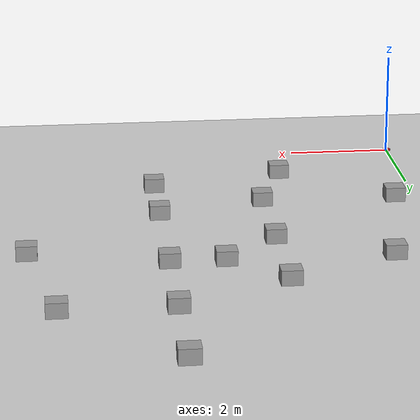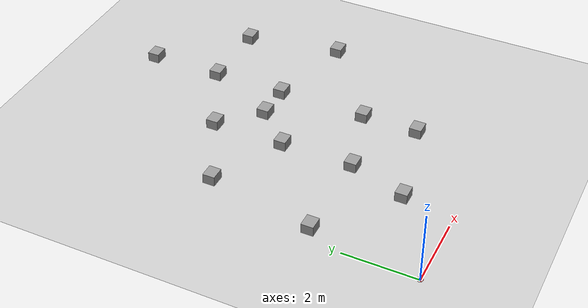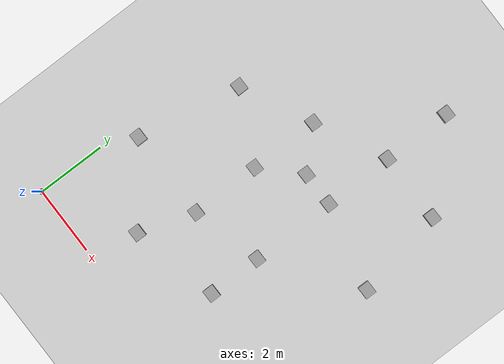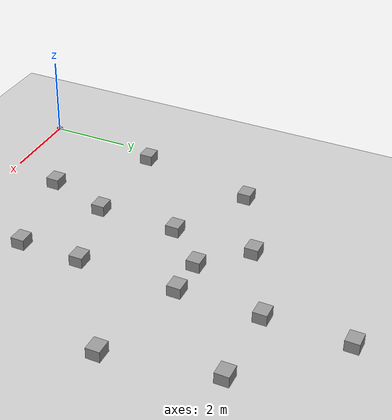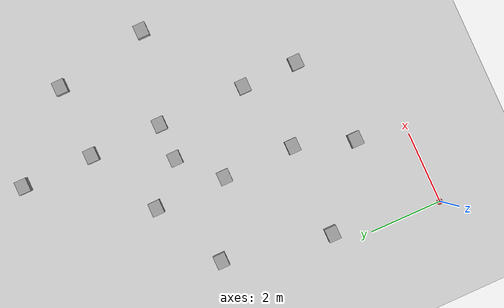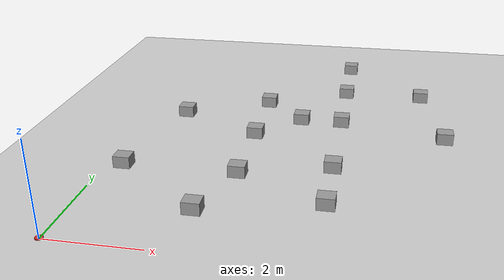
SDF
<sdf version="1.7">
 <world name="default">
  <model name="ground_plane">
   <static>1</static>
   <link name="link">
    <collision name="collision">
     <geometry><plane><normal>0 0 1</normal><size>100 100</size></plane></geometry>
     <surface>
      <contact><collide_bitmask>65535</collide_bitmask></contact>
      <friction><ode><mu>100</mu><mu2>50</mu2></ode></friction>
     </surface>
    </collision>
    <visual name="visual">
     <cast_shadows>0</cast_shadows>
     <geometry><plane><normal>0 0 1</normal><size>100 100</size></plane></geometry>
     <material>
      <script><uri>file://media/materials/scripts/gazebo.material</uri><name>Gazebo/Grey</name></script>
     </material>
    </visual>
   </link>
  </model>
  <light name="sun" type="directional">
   <pose>0 0 10 0 -0 0</pose>
   <diffuse>0.8 0.8 0.8 1</diffuse>
   <specular>0.2 0.2 0.2 1</specular>
   <attenuation>
    <range>1000</range>
    <constant>0.9</constant>
    <linear>0.01</linear>
    <quadratic>0.001</quadratic>
   </attenuation>
   <direction>-0.5 0.1 -0.9</direction>
   <spot><inner_angle>0</inner_angle><outer_angle>0</outer_angle><falloff>0</falloff></spot>
  </light>
  <gravity>0 0 -9.8</gravity>
  <magnetic_field>6e-06 2.3e-05 -4.2e-05</magnetic_field>
  <atmosphere type="adiabatic"/>
  <physics type="ode">
   <max_step_size>0.001</max_step_size>
   <real_time_factor>1</real_time_factor>
   <real_time_update_rate>1000</real_time_update_rate>
  </physics>
  <scene><ambient>0.4 0.4 0.4 1</ambient><background>0.7 0.7 0.7 1</background><shadows>1</shadows></scene>
  <spherical_coordinates>
   <surface_model>EARTH_WGS84</surface_model>
   <latitude_deg>0</latitude_deg>
   <longitude_deg>0</longitude_deg>
   <elevation>0</elevation>
   <heading_deg>0</heading_deg>
  </spherical_coordinates>
  <model name="mybot">
   <link name="base_link">
    <inertial>
     <pose>-0 0 -0.000805 0 -0 0</pose>
     <mass>0.87</mass>
     <inertia>
      <ixx>0.0132296</ixx>
      <ixy>0</ixy>
      <ixz>1.74469e-22</ixz>
      <iyy>0.0134046</iyy>
      <iyz>0</iyz>
      <izz>0.00274217</izz>
     </inertia>
    </inertial>
    <collision name="base_link_collision">
     <geometry><cylinder><length>0.025</length><radius>0.08</radius></cylinder></geometry>
     <surface><friction><ode><mu>0</mu><mu2>0</mu2></ode></friction></surface>
    </collision>
    <collision name="base_link_fixed_joint_lump__back_wheel_collision_1">
     <pose>-0.05 0 -0.01 0 -0 0</pose>
     <geometry><sphere><radius>0.016</radius></sphere></geometry>
     <surface>
      <contact><ode><kp>500000</kp><kd>10</kd><max_vel>0.1</max_vel><min_depth>0.001</min_depth></ode></contact>
      <friction><ode><mu>0</mu><mu2>0</mu2></ode></friction>
     </surface>
    </collision>
    <collision name="base_link_fixed_joint_lump__front_wheel_collision_2">
     <pose>0.05 0 -0.01 0 -0 0</pose>
     <geometry><sphere><radius>0.016</radius></sphere></geometry>
     <surface>
      <contact><ode><kp>500000</kp><kd>10</kd><max_vel>0.1</max_vel><min_depth>0.001</min_depth></ode></contact>
      <friction><ode><mu>0</mu><mu2>0</mu2></ode></friction>
     </surface>
    </collision>
    <visual name="base_link_visual">
     <geometry><cylinder><length>0.025</length><radius>0.08</radius></cylinder></geometry>
     <material>
      <script><name>Gazebo/Red</name><uri>file://media/materials/scripts/gazebo.material</uri></script>
     </material>
    </visual>
    <visual name="base_link_fixed_joint_lump__back_wheel_visual_1">
     <pose>-0.05 0 -0.01 0 -0 0</pose>
     <geometry><sphere><radius>0.016</radius></sphere></geometry>
     <material>
      <script><name>Gazebo/Black</name><uri>file://media/materials/scripts/gazebo.material</uri></script>
     </material>
    </visual>
    <visual name="base_link_fixed_joint_lump__front_wheel_visual_2">
     <pose>0.05 0 -0.01 0 -0 0</pose>
     <geometry><sphere><radius>0.016</radius></sphere></geometry>
     <material>
      <script><name>Gazebo/Black</name><uri>file://media/materials/scripts/gazebo.material</uri></script>
     </material>
    </visual>
    <sensor name="imu_sensor" type="imu">
     <always_on>1</always_on>
     <update_rate>100</update_rate>
     <visualize>1</visualize>
     <topic>imu_data_plugin</topic>
     <plugin name="imu_plugin" filename="libgazebo_ros_imu_sensor.so">
      <topicName>imu</topicName>
      <bodyName>imu_link</bodyName>
      <updateRateHZ>10.0</updateRateHZ>
      <gaussianNoise>0.0</gaussianNoise>
      <xyzOffset>0 0 0</xyzOffset>
      <rpyOffset>0 0 0</rpyOffset>
      <frameName>imu_link</frameName>
      <robotNamespace>/</robotNamespace>
     </plugin>
    </sensor>
    <sensor name="head_hokuyo_sensor" type="ray">
     <visualize>1</visualize>
     <update_rate>5</update_rate>
     <ray>
      <scan>
       <horizontal>
        <samples>15</samples>
        <resolution>1</resolution>
        <min_angle>-0.87</min_angle>
        <max_angle>0.87</max_angle>
       </horizontal>
       <vertical><samples>1</samples><min_angle>0</min_angle><max_angle>0</max_angle></vertical>
      </scan>
      <range><min>0.145</min><max>1</max><resolution>0.01</resolution></range>
      <noise><type>gaussian</type><mean>0</mean><stddev>0.01</stddev></noise>
     </ray>
     <plugin name="gazebo_ros_head_hokuyo_controller" filename="libgazebo_ros_laser.so">
      <topicName>LaserScan</topicName>
      <frameName>laser_scanner</frameName>
      <robotNamespace>/</robotNamespace>
     </plugin>
     <pose>-0.06 0 0 0 -0 0</pose>
    </sensor>
    <fdir>1 1 0</fdir>
    <fdir>1 1 0</fdir>
   </link>
   <joint name="left_wheel_joint" type="revolute">
    <pose relative_to="base_link">0 0.045 -0.01 -1.5708 0 0</pose>
    <parent>base_link</parent>
    <child>left_wheel</child>
    <axis>
     <xyz>0 0 1</xyz>
     <limit><lower>-1e+16</lower><upper>1e+16</upper></limit>
     <dynamics><spring_reference>0</spring_reference><spring_stiffness>0</spring_stiffness></dynamics>
    </axis>
   </joint>
   <link name="left_wheel">
    <pose relative_to="left_wheel_joint">0 0 0 0 -0 0</pose>
    <inertial>
     <mass>0.0032</mass>
     <inertia>
      <ixx>2.1787e-07</ixx>
      <ixy>0</ixy>
      <ixz>0</ixz>
      <iyy>2.1787e-07</iyy>
      <iyz>0</iyz>
      <izz>4.096e-07</izz>
     </inertia>
    </inertial>
    <collision name="left_wheel_collision">
     <geometry><cylinder><length>0.007</length><radius>0.016</radius></cylinder></geometry>
     <surface>
      <contact><ode><kp>500000</kp><kd>10</kd><max_vel>0.1</max_vel><min_depth>0.001</min_depth></ode></contact>
      <friction><ode><mu>1</mu><mu2>1</mu2></ode></friction>
     </surface>
    </collision>
    <visual name="left_wheel_visual">
     <geometry><cylinder><length>0.007</length><radius>0.016</radius></cylinder></geometry>
     <material>
      <script><name>Gazebo/Black</name><uri>file://media/materials/scripts/gazebo.material</uri></script>
     </material>
    </visual>
    <fdir>1 1 0</fdir>
   </link>
   <joint name="right_wheel_joint" type="revolute">
    <pose relative_to="base_link">0 -0.045 -0.01 -1.5708 0 0</pose>
    <parent>base_link</parent>
    <child>right_wheel</child>
    <axis>
     <xyz>0 0 1</xyz>
     <limit><lower>-1e+16</lower><upper>1e+16</upper></limit>
     <dynamics><spring_reference>0</spring_reference><spring_stiffness>0</spring_stiffness></dynamics>
    </axis>
   </joint>
   <link name="right_wheel">
    <pose relative_to="right_wheel_joint">0 0 0 0 -0 0</pose>
    <inertial>
     <mass>0.0032</mass>
     <inertia>
      <ixx>2.1787e-07</ixx>
      <ixy>0</ixy>
      <ixz>0</ixz>
      <iyy>2.1787e-07</iyy>
      <iyz>0</iyz>
      <izz>4.096e-07</izz>
     </inertia>
    </inertial>
    <collision name="right_wheel_collision">
     <geometry><cylinder><length>0.007</length><radius>0.016</radius></cylinder></geometry>
     <surface>
      <contact><ode><kp>500000</kp><kd>10</kd><max_vel>0.1</max_vel><min_depth>0.001</min_depth></ode></contact>
      <friction><ode><mu>1</mu><mu2>1</mu2></ode></friction>
     </surface>
    </collision>
    <visual name="right_wheel_visual">
     <geometry><cylinder><length>0.007</length><radius>0.016</radius></cylinder></geometry>
     <material>
      <script><name>Gazebo/Black</name><uri>file://media/materials/scripts/gazebo.material</uri></script>
     </material>
    </visual>
    <fdir>1 1 0</fdir>
   </link>
   <plugin name="gazebo_ros_control" filename="libgazebo_ros_control.so">
    <controlPeriod>0.001</controlPeriod>
    <legacyModeNS>0</legacyModeNS>
    <robotNamespace>/</robotNamespace>
   </plugin>
   <plugin name="joint_state_publisher" filename="libgazebo_ros_joint_state_publisher.so">
    <jointName>left_wheel_joint, right_wheel_joint</jointName>
    <robotNamespace>/</robotNamespace>
   </plugin>
   <plugin name="differential_drive_controller" filename="libgazebo_ros_diff_drive.so">
    <legacyMode>0</legacyMode>
    <alwaysOn>1</alwaysOn>
    <updateRate>10</updateRate>
    <leftJoint>left_wheel_joint</leftJoint>
    <rightJoint>right_wheel_joint</rightJoint>
    <robotBaseFrame>base_link</robotBaseFrame>
    <wheelSeparation>0.097</wheelSeparation>
    <wheelDiameter>0.032</wheelDiameter>
    <wheelTorque>0.2</wheelTorque>
    <commandTopic>cmd_vel</commandTopic>
    <odometryTopic>odom</odometryTopic>
    <odometryFrame>odom</odometryFrame>
    <publishWheelJointState>1</publishWheelJointState>
    <publishOdomTF>1</publishOdomTF>
    <robotNamespace>/</robotNamespace>
   </plugin>
   <static>0</static>
   <plugin name="novatel_gps_sim" filename="libhector_gazebo_ros_gps.so">
    <alwaysOn>1</alwaysOn>
    <updateRate>1.0</updateRate>
    <bodyName>base_link</bodyName>
    <topicName>fix</topicName>
    <velocityTopicName>fix_velocity</velocityTopicName>
    <drift>0 0 0</drift>
    <gaussianNoise>0 0 0</gaussianNoise>
    <velocityDrift>0 0 0</velocityDrift>
    <velocityGaussianNoise>0 0 0</velocityGaussianNoise>
    <robotNamespace>/</robotNamespace>
   </plugin>
   <pose>1.8e-05 0.01109 0.024995 -0.000566 -0 -0.000273</pose>
  </model>
  <light name="user_spot_light_0" type="spot">
   <pose>7.97204 9.0083 1 0 -0 0</pose>
   <diffuse>0.5 0.5 0.5 1</diffuse>
   <specular>0.1 0.1 0.1 1</specular>
   <direction>0 0 -1</direction>
   <attenuation>
    <range>20</range>
    <constant>0.5</constant>
    <linear>0.01</linear>
    <quadratic>0.001</quadratic>
   </attenuation>
   <cast_shadows>0</cast_shadows>
   <spot><inner_angle>0.6</inner_angle><outer_angle>1</outer_angle><falloff>1</falloff></spot>
  </light>
  <model name="unit_box_clone">
   <pose>2.4685 1.39844 0.137137 0 -0 0</pose>
   <link name="link">
    <inertial>
     <mass>1</mass>
     <inertia>
      <ixx>0.166667</ixx>
      <ixy>0</ixy>
      <ixz>0</ixz>
      <iyy>0.166667</iyy>
      <iyz>0</iyz>
      <izz>0.166667</izz>
     </inertia>
    </inertial>
    <collision name="collision">
     <geometry><box><size>0.378338 0.332685 0.274274</size></box></geometry>
    </collision>
    <visual name="visual">
     <geometry><box><size>0.378338 0.332685 0.274274</size></box></geometry>
     <material>
      <script><name>Gazebo/Grey</name><uri>file://media/materials/scripts/gazebo.material</uri></script>
     </material>
    </visual>
   </link>
  </model>
  <model name="unit_box_clone_clone">
   <pose>3 3 0.137137 0 -0 0</pose>
   <link name="link">
    <inertial>
     <mass>1</mass>
     <inertia>
      <ixx>0.166667</ixx>
      <ixy>0</ixy>
      <ixz>0</ixz>
      <iyy>0.166667</iyy>
      <iyz>0</iyz>
      <izz>0.166667</izz>
     </inertia>
    </inertial>
    <collision name="collision">
     <geometry><box><size>0.378338 0.332685 0.274274</size></box></geometry>
    </collision>
    <visual name="visual">
     <geometry><box><size>0.378338 0.332685 0.274274</size></box></geometry>
     <material>
      <script><name>Gazebo/Grey</name><uri>file://media/materials/scripts/gazebo.material</uri></script>
     </material>
    </visual>
   </link>
  </model>
  <model name="unit_box_clone_clone_0">
   <pose>5 2 0.137137 0 -0 0</pose>
   <link name="link">
    <inertial>
     <mass>1</mass>
     <inertia>
      <ixx>0.166667</ixx>
      <ixy>0</ixy>
      <ixz>0</ixz>
      <iyy>0.166667</iyy>
      <iyz>0</iyz>
      <izz>0.166667</izz>
     </inertia>
    </inertial>
    <collision name="collision">
     <geometry><box><size>0.378338 0.332685 0.274274</size></box></geometry>
    </collision>
    <visual name="visual">
     <geometry><box><size>0.378338 0.332685 0.274274</size></box></geometry>
     <material>
      <script><name>Gazebo/Grey</name><uri>file://media/materials/scripts/gazebo.material</uri></script>
     </material>
    </visual>
   </link>
  </model>
  <model name="unit_box_clone_clone_1">
   <pose>5 3.5476 0.137137 0 -0 0</pose>
   <link name="link">
    <inertial>
     <mass>1</mass>
     <inertia>
      <ixx>0.166667</ixx>
      <ixy>0</ixy>
      <ixz>0</ixz>
      <iyy>0.166667</iyy>
      <iyz>0</iyz>
      <izz>0.166667</izz>
     </inertia>
    </inertial>
    <collision name="collision">
     <geometry><box><size>0.378338 0.332685 0.274274</size></box></geometry>
    </collision>
    <visual name="visual">
     <geometry><box><size>0.378338 0.332685 0.274274</size></box></geometry>
     <material>
      <script><name>Gazebo/Grey</name><uri>file://media/materials/scripts/gazebo.material</uri></script>
     </material>
    </visual>
   </link>
  </model>
  <model name="unit_box_clone_clone_2">
   <pose>4 6 0.137137 0 -0 0</pose>
   <link name="link">
    <inertial>
     <mass>1</mass>
     <inertia>
      <ixx>0.166667</ixx>
      <ixy>0</ixy>
      <ixz>0</ixz>
      <iyy>0.166667</iyy>
      <iyz>0</iyz>
      <izz>0.166667</izz>
     </inertia>
    </inertial>
    <collision name="collision">
     <geometry><box><size>0.378338 0.332685 0.274274</size></box></geometry>
    </collision>
    <visual name="visual">
     <geometry><box><size>0.378338 0.332685 0.274274</size></box></geometry>
     <material>
      <script><name>Gazebo/Grey</name><uri>file://media/materials/scripts/gazebo.material</uri></script>
     </material>
    </visual>
   </link>
  </model>
  <model name="unit_box_clone_clone_3">
   <pose>3 5 0.137137 0 -0 0</pose>
   <link name="link">
    <inertial>
     <mass>1</mass>
     <inertia>
      <ixx>0.166667</ixx>
      <ixy>0</ixy>
      <ixz>0</ixz>
      <iyy>0.166667</iyy>
      <iyz>0</iyz>
      <izz>0.166667</izz>
     </inertia>
    </inertial>
    <collision name="collision">
     <geometry><box><size>0.378338 0.332685 0.274274</size></box></geometry>
    </collision>
    <visual name="visual">
     <geometry><box><size>0.378338 0.332685 0.274274</size></box></geometry>
     <material>
      <script><name>Gazebo/Grey</name><uri>file://media/materials/scripts/gazebo.material</uri></script>
     </material>
    </visual>
   </link>
  </model>
  <model name="unit_box_clone_clone_5">
   <pose>5 6 0.137137 0 -0 0</pose>
   <link name="link">
    <inertial>
     <mass>1</mass>
     <inertia>
      <ixx>0.166667</ixx>
      <ixy>0</ixy>
      <ixz>0</ixz>
      <iyy>0.166667</iyy>
      <iyz>0</iyz>
      <izz>0.166667</izz>
     </inertia>
    </inertial>
    <collision name="collision">
     <geometry><box><size>0.378338 0.332685 0.274274</size></box></geometry>
    </collision>
    <visual name="visual">
     <geometry><box><size>0.378338 0.332685 0.274274</size></box></geometry>
     <material>
      <script><name>Gazebo/Grey</name><uri>file://media/materials/scripts/gazebo.material</uri></script>
     </material>
    </visual>
   </link>
  </model>
  <model name="unit_box_clone_clone_4">
   <pose>7.48292 5.40008 0.137137 0 -0 0</pose>
   <link name="link">
    <inertial>
     <mass>1</mass>
     <inertia>
      <ixx>0.166667</ixx>
      <ixy>0</ixy>
      <ixz>0</ixz>
      <iyy>0.166667</iyy>
      <iyz>0</iyz>
      <izz>0.166667</izz>
     </inertia>
    </inertial>
    <collision name="collision">
     <geometry><box><size>0.378338 0.332685 0.274274</size></box></geometry>
    </collision>
    <visual name="visual">
     <geometry><box><size>0.378338 0.332685 0.274274</size></box></geometry>
     <material>
      <script><name>Gazebo/Grey</name><uri>file://media/materials/scripts/gazebo.material</uri></script>
     </material>
    </visual>
   </link>
  </model>
  <model name="unit_box_clone_clone_6">
   <pose>7 8 0.137137 0 -0 0</pose>
   <link name="link">
    <inertial>
     <mass>1</mass>
     <inertia>
      <ixx>0.166667</ixx>
      <ixy>0</ixy>
      <ixz>0</ixz>
      <iyy>0.166667</iyy>
      <iyz>0</iyz>
      <izz>0.166667</izz>
     </inertia>
    </inertial>
    <collision name="collision">
     <geometry><box><size>0.378338 0.332685 0.274274</size></box></geometry>
    </collision>
    <visual name="visual">
     <geometry><box><size>0.378338 0.332685 0.274274</size></box></geometry>
     <material>
      <script><name>Gazebo/Grey</name><uri>file://media/materials/scripts/gazebo.material</uri></script>
     </material>
    </visual>
   </link>
  </model>
  <model name="unit_box_clone_clone_7">
   <pose>0.428097 3 0.137137 0 -0 0</pose>
   <link name="link">
    <inertial>
     <mass>1</mass>
     <inertia>
      <ixx>0.166667</ixx>
      <ixy>0</ixy>
      <ixz>0</ixz>
      <iyy>0.166667</iyy>
      <iyz>0</iyz>
      <izz>0.166667</izz>
     </inertia>
    </inertial>
    <collision name="collision">
     <geometry><box><size>0.378338 0.332685 0.274274</size></box></geometry>
    </collision>
    <visual name="visual">
     <geometry><box><size>0.378338 0.332685 0.274274</size></box></geometry>
     <material>
      <script><name>Gazebo/Grey</name><uri>file://media/materials/scripts/gazebo.material</uri></script>
     </material>
    </visual>
   </link>
  </model>
  <model name="unit_box_clone_clone_8">
   <pose>1 6 0.137137 0 -0 0</pose>
   <link name="link">
    <inertial>
     <mass>1</mass>
     <inertia>
      <ixx>0.166667</ixx>
      <ixy>0</ixy>
      <ixz>0</ixz>
      <iyy>0.166667</iyy>
      <iyz>0</iyz>
      <izz>0.166667</izz>
     </inertia>
    </inertial>
    <collision name="collision">
     <geometry><box><size>0.378338 0.332685 0.274274</size></box></geometry>
    </collision>
    <visual name="visual">
     <geometry><box><size>0.378338 0.332685 0.274274</size></box></geometry>
     <material>
      <script><name>Gazebo/Grey</name><uri>file://media/materials/scripts/gazebo.material</uri></script>
     </material>
    </visual>
   </link>
  </model>
  <model name="unit_box_clone_clone_9">
   <pose>3 7 0.137137 0 -0 0</pose>
   <link name="link">
    <inertial>
     <mass>1</mass>
     <inertia>
      <ixx>0.166667</ixx>
      <ixy>0</ixy>
      <ixz>0</ixz>
      <iyy>0.166667</iyy>
      <iyz>0</iyz>
      <izz>0.166667</izz>
     </inertia>
    </inertial>
    <collision name="collision">
     <geometry><box><size>0.378338 0.332685 0.274274</size></box></geometry>
    </collision>
    <visual name="visual">
     <geometry><box><size>0.378338 0.332685 0.274274</size></box></geometry>
     <material>
      <script><name>Gazebo/Grey</name><uri>file://media/materials/scripts/gazebo.material</uri></script>
     </material>
    </visual>
   </link>
  </model>
  <model name="unit_box_clone_clone_10">
   <pose>5 8 0.137137 0 -0 0.000102</pose>
   <link name="link">
    <inertial>
     <mass>1</mass>
     <inertia>
      <ixx>0.166667</ixx>
      <ixy>0</ixy>
      <ixz>0</ixz>
      <iyy>0.166667</iyy>
      <iyz>0</iyz>
      <izz>0.166667</izz>
     </inertia>
    </inertial>
    <collision name="collision">
     <geometry><box><size>0.378338 0.332685 0.274274</size></box></geometry>
    </collision>
    <visual name="visual">
     <geometry><box><size>0.378338 0.332685 0.274274</size></box></geometry>
     <material>
      <script><name>Gazebo/Grey</name><uri>file://media/materials/scripts/gazebo.material</uri></script>
     </material>
    </visual>
   </link>
  </model>
  <model name="unit_box_clone_clone_11">
   <pose>5 10 0.137137 0 -0 0.000102</pose>
   <link name="link">
    <inertial>
     <mass>1</mass>
     <inertia>
      <ixx>0.166667</ixx>
      <ixy>0</ixy>
      <ixz>0</ixz>
      <iyy>0.166667</iyy>
      <iyz>0</iyz>
      <izz>0.166667</izz>
     </inertia>
    </inertial>
    <collision name="collision">
     <geometry><box><size>0.378338 0.332685 0.274274</size></box></geometry>
    </collision>
    <visual name="visual">
     <geometry><box><size>0.378338 0.332685 0.274274</size></box></geometry>
     <material>
      <script><name>Gazebo/Grey</name><uri>file://media/materials/scripts/gazebo.material</uri></script>
     </material>
    </visual>
   </link>
  </model>
 </world>
</sdf>
